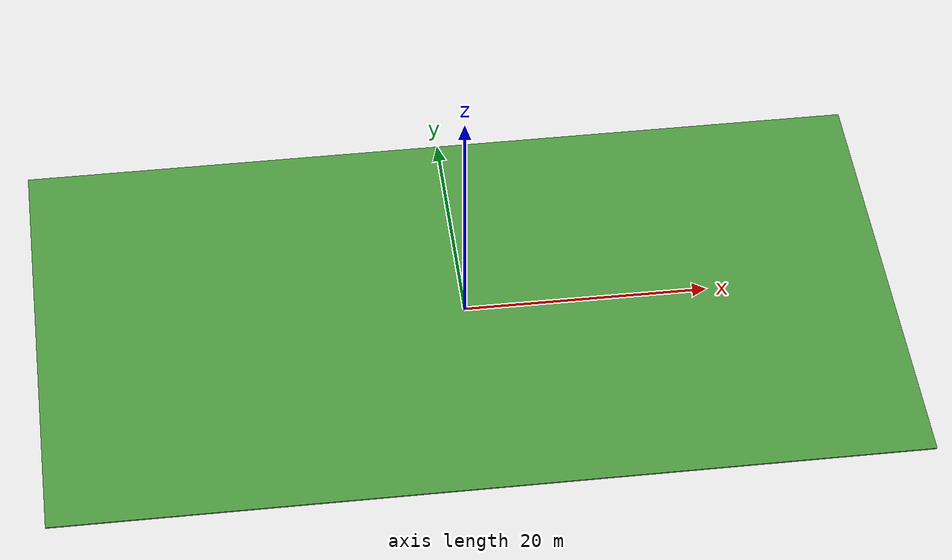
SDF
<?xml version="1.0" ?>
<sdf version="1.5">
  <model name="winter_grass_plane">
    <static>true</static>
    <link name="link">
      <collision name="collision">
        <geometry>
          <box>
            <size>70 40 .1</size>
          </box>
        </geometry>
      </collision>
      <visual name="visual">
        <cast_shadows>false</cast_shadows>
        <geometry>
          <box>
            <size>70 40 .1</size>
          </box>
        </geometry>
        <material>
          <script>
            <uri>model://winter_grass_plane/materials/scripts</uri>
            <uri>model://winter_grass_plane/materials/textures</uri>
            <name>pvc/winter_grass</name>
          </script>
        </material>
      </visual>
    </link>
  </model>
</sdf>
